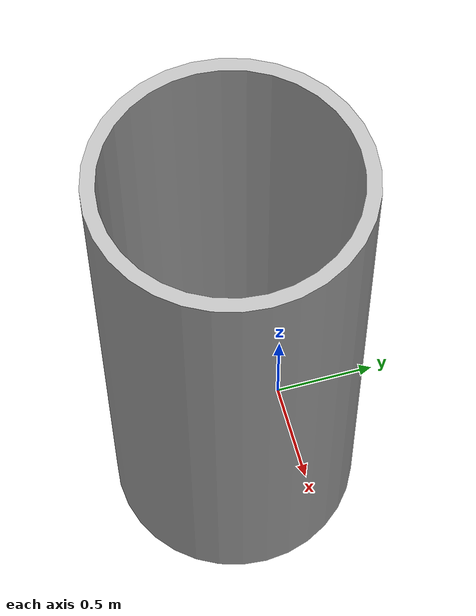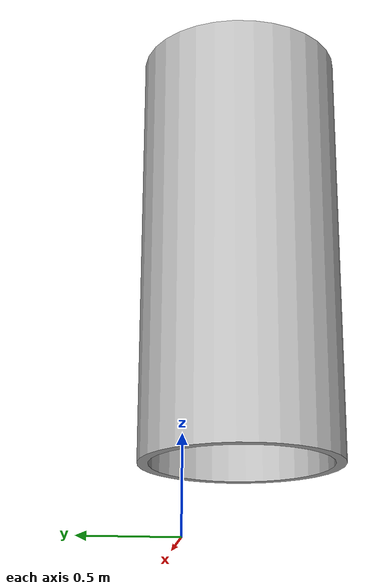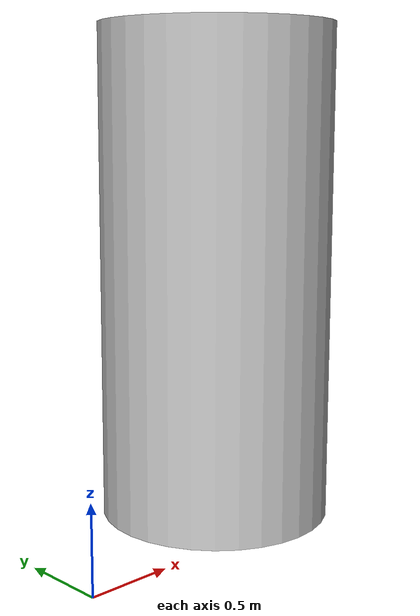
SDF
<?xml version="1.0" ?>
<sdf version="1.4">
	<model name="duct">
		<static>true</static>
		<link name="link">
			<pose>0 0 0.06 0 0 0</pose>
			<collision name="collision">
				<geometry>
					<mesh>
						<uri>model://duct/mesh/duct.dae</uri>
						<scale>0.5 0.5 1.0</scale>
					</mesh>
				</geometry>
				<surface>
					<bounce>
						<restitution_coefficient>0.01</restitution_coefficient>
						<threshold>5.0</threshold>
					</bounce>
					<friction>
						<ode>
							<mu>10</mu>
							<mu2>10</mu2>
						</ode>
					</friction>
					<contact>
						<ode>
							<soft_cfm>0.001</soft_cfm>
							<kp>100000.0</kp>
							<kd>1000.0</kd>
						</ode>
					</contact>
				</surface>
			</collision>
			<visual name="visual">
				<geometry>
					<mesh>
						<uri>model://duct/mesh/duct.dae</uri>
						<scale>0.5 0.5 1.0</scale>
					</mesh>
				</geometry>
			</visual>
		</link>
	</model>
</sdf>
